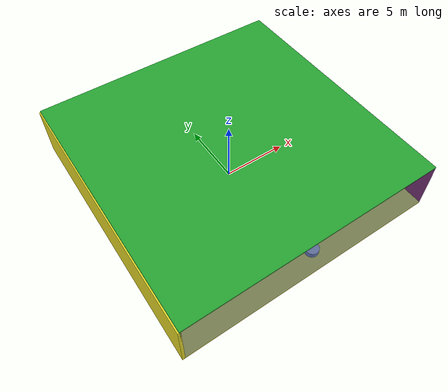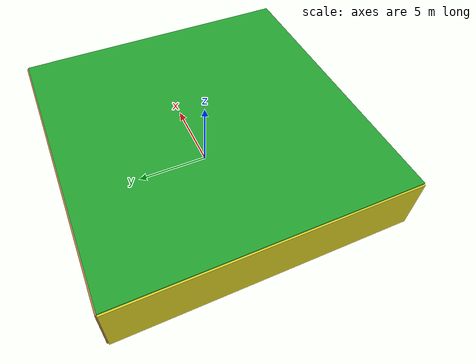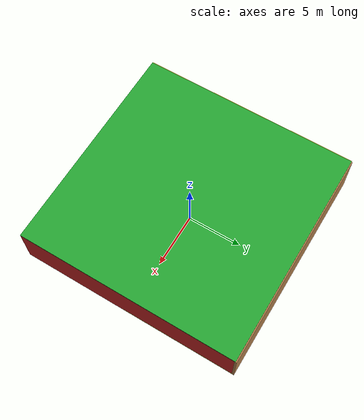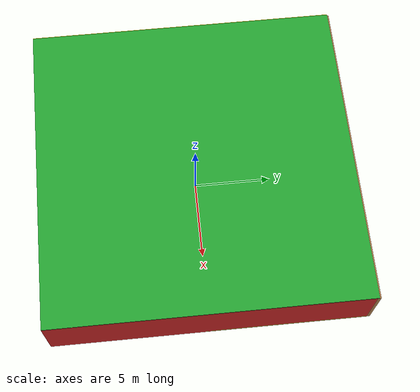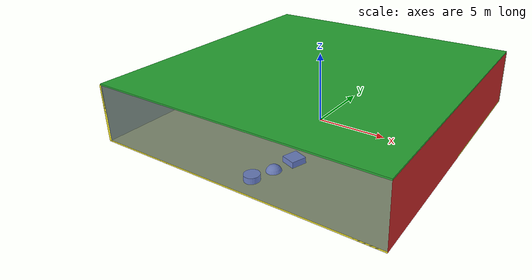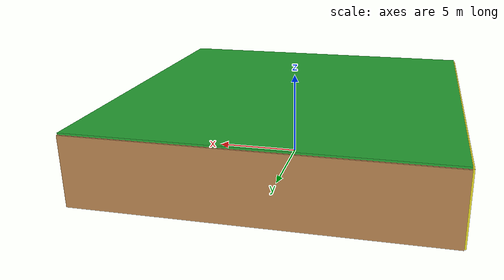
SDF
<sdf version="1.4">
 <world name="default">
  <physics type="ode">
   <max_step_size>0.001</max_step_size>
   <real_time_factor>1</real_time_factor>
   <real_time_update_rate>1000</real_time_update_rate>
   <gravity>0 0 -9.8</gravity>
  </physics>
  <scene><ambient>0.4 0.4 0.4 1</ambient><background>0.7 0.7 0.7 1</background><shadows>1</shadows></scene>
  <model name="Surrounding">
   <static>1</static>
   <link name="Ceiling">
    <collision name="Ceiling_Collision"><geometry><box><size>20 20 0.1</size></box></geometry></collision>
    <visual name="Ceiling_Visual">
     <geometry><box><size>20 20 0.1</size></box></geometry>
     <material>
      <script><uri>file://media/materials/scripts/gazebo.material</uri><name>Gazebo/GreenGlow</name></script>
     </material>
    </visual>
    <pose>0 0 4.05 0 0 0</pose>
   </link>
   <link name="Wall_South">
    <collision name="Wall_South_Collision">
     <geometry><box><size>20 0 4</size></box></geometry>
     <pose>0 0 2 0 -0 0</pose>
    </collision>
    <visual name="Wall_South_Visual">
     <pose>0 0 2 0 -0 0</pose>
     <geometry><box><size>20 0 4</size></box></geometry>
     <material>
      <script><uri>file://media/materials/scripts/gazebo.material</uri><name>Gazebo/BlueTransparent</name></script>
     </material>
    </visual>
    <velocity_decay><linear>0</linear><angular>0</angular></velocity_decay>
    <pose>0 -10 0 0 -0 0</pose>
   </link>
   <link name="Wall_East">
    <collision name="Wall_21_Collision">
     <geometry><box><size>20 0 4</size></box></geometry>
     <pose>0 0 2 0 -0 0</pose>
    </collision>
    <visual name="Wall_21_Visual">
     <pose>0 0 2 0 -0 0</pose>
     <geometry><box><size>20 0 4</size></box></geometry>
     <material>
      <script><uri>file://media/materials/scripts/gazebo.material</uri><name>Gazebo/RedBright</name></script>
     </material>
    </visual>
    <velocity_decay><linear>0</linear><angular>0</angular></velocity_decay>
    <pose>10 0 0 0 -0 1.5708</pose>
   </link>
   <link name="Wall_North">
    <collision name="Wall_22_Collision">
     <geometry><box><size>20 0.2 4</size></box></geometry>
     <pose>0 0 2 0 -0 0</pose>
    </collision>
    <visual name="Wall_22_Visual">
     <pose>0 0 2 0 -0 0</pose>
     <geometry><box><size>20 0.2 4</size></box></geometry>
     <material>
      <script><uri>file://media/materials/scripts/gazebo.material</uri><name>Gazebo/Wood</name></script>
     </material>
    </visual>
    <velocity_decay><linear>0</linear><angular>0</angular></velocity_decay>
    <pose>0 10 0 0 -0 0</pose>
   </link>
   <link name="Wall_West">
    <collision name="Wall_23_Collision">
     <geometry><box><size>20 0.2 4</size></box></geometry>
     <pose>0 0 2 0 -0 0</pose>
    </collision>
    <visual name="Wall_23_Visual">
     <pose>0 0 2 0 -0 0</pose>
     <geometry><box><size>20 0.2 4</size></box></geometry>
     <material>
      <script><uri>file://media/materials/scripts/gazebo.material</uri><name>Gazebo/YellowGlow</name></script>
     </material>
    </visual>
    <velocity_decay><linear>0</linear><angular>0</angular></velocity_decay>
    <pose>-10 0 0 0 0 -1.5708</pose>
   </link>
   <link name="Ground_link">
    <collision name="collision">
     <pose>0 0 .05 0 -0 0</pose>
     <geometry><box><size>20 20 0.1</size></box></geometry>
    </collision>
    <visual name="visual">
     <pose>0 0 .05 0 -0 0</pose>
     <geometry><box><size>20 20 0.1</size></box></geometry>
     <material>
      <script><uri>file://media/materials/scripts/gazebo.material</uri><name>Gazebo/Yellow</name></script>
     </material>
    </visual>
   </link>
   <static>1</static>
  </model>
  <spherical_coordinates>
   <surface_model>EARTH_WGS84</surface_model>
   <latitude_deg>0</latitude_deg>
   <longitude_deg>0</longitude_deg>
   <elevation>0</elevation>
   <heading_deg>0</heading_deg>
  </spherical_coordinates>
  <light name="lightball_0" type="diffuse">
   <diffuse>0.8 0.8 0.8 1</diffuse>
   <specular>0.2 0.2 0.2 1</specular>
   <attenuation>
    <range>100</range>
    <constant>0.7</constant>
    <linear>0.01</linear>
    <quadratic>0.001</quadratic>
   </attenuation>
   <direction>-0.5 0.1 -0.9</direction>
   <pose>-1.01790403431 -4.59281454214 3.11763598756 0 0 0</pose>
  </light>
  <light name="lightball_1" type="diffuse">
   <diffuse>0.8 0.8 0.8 1</diffuse>
   <specular>0.2 0.2 0.2 1</specular>
   <attenuation>
    <range>100</range>
    <constant>0.7</constant>
    <linear>0.01</linear>
    <quadratic>0.001</quadratic>
   </attenuation>
   <direction>-0.5 0.1 -0.9</direction>
   <pose>0.459413990991 2.60857781797 3.66250413797 0 0 0</pose>
  </light>
  <light name="lightball_2" type="diffuse">
   <diffuse>0.8 0.8 0.8 1</diffuse>
   <specular>0.2 0.2 0.2 1</specular>
   <attenuation>
    <range>100</range>
    <constant>0.7</constant>
    <linear>0.01</linear>
    <quadratic>0.001</quadratic>
   </attenuation>
   <direction>-0.5 0.1 -0.9</direction>
   <pose>-5.55992772885 -8.02371713499 3.00586210852 0 0 0</pose>
  </light>
  <light name="lightball_3" type="diffuse">
   <diffuse>0.8 0.8 0.8 1</diffuse>
   <specular>0.2 0.2 0.2 1</specular>
   <attenuation>
    <range>100</range>
    <constant>0.7</constant>
    <linear>0.01</linear>
    <quadratic>0.001</quadratic>
   </attenuation>
   <direction>-0.5 0.1 -0.9</direction>
   <pose>0.0947813556305 -0.620166510862 1.66490228189 0 0 0</pose>
  </light>
  <light name="lightball_4" type="diffuse">
   <diffuse>0.8 0.8 0.8 1</diffuse>
   <specular>0.2 0.2 0.2 1</specular>
   <attenuation>
    <range>100</range>
    <constant>0.7</constant>
    <linear>0.01</linear>
    <quadratic>0.001</quadratic>
   </attenuation>
   <direction>-0.5 0.1 -0.9</direction>
   <pose>6.40095688326 6.21007438234 2.22590755327 0 0 0</pose>
  </light>
  <light name="lightball_5" type="diffuse">
   <diffuse>0.8 0.8 0.8 1</diffuse>
   <specular>0.2 0.2 0.2 1</specular>
   <attenuation>
    <range>100</range>
    <constant>0.7</constant>
    <linear>0.01</linear>
    <quadratic>0.001</quadratic>
   </attenuation>
   <direction>-0.5 0.1 -0.9</direction>
   <pose>5.45621429316 -2.46056150519 0.968348154488 0 0 0</pose>
  </light>
  <light name="lightball_6" type="diffuse">
   <diffuse>0.8 0.8 0.8 1</diffuse>
   <specular>0.2 0.2 0.2 1</specular>
   <attenuation>
    <range>100</range>
    <constant>0.7</constant>
    <linear>0.01</linear>
    <quadratic>0.001</quadratic>
   </attenuation>
   <direction>-0.5 0.1 -0.9</direction>
   <pose>2.58403943342 -4.73579922686 1.12029258574 0 0 0</pose>
  </light>
  <light name="lightball_7" type="diffuse">
   <diffuse>0.8 0.8 0.8 1</diffuse>
   <specular>0.2 0.2 0.2 1</specular>
   <attenuation>
    <range>100</range>
    <constant>0.7</constant>
    <linear>0.01</linear>
    <quadratic>0.001</quadratic>
   </attenuation>
   <direction>-0.5 0.1 -0.9</direction>
   <pose>2.60945625595 -3.13230098181 2.2223056833 0 0 0</pose>
  </light>
  <light name="lightball_8" type="diffuse">
   <diffuse>0.8 0.8 0.8 1</diffuse>
   <specular>0.2 0.2 0.2 1</specular>
   <attenuation>
    <range>100</range>
    <constant>0.7</constant>
    <linear>0.01</linear>
    <quadratic>0.001</quadratic>
   </attenuation>
   <direction>-0.5 0.1 -0.9</direction>
   <pose>-6.61249383718 5.9610856856 1.2948110035 0 0 0</pose>
  </light>
  <light name="lightball_9" type="diffuse">
   <diffuse>0.8 0.8 0.8 1</diffuse>
   <specular>0.2 0.2 0.2 1</specular>
   <attenuation>
    <range>100</range>
    <constant>0.7</constant>
    <linear>0.01</linear>
    <quadratic>0.001</quadratic>
   </attenuation>
   <direction>-0.5 0.1 -0.9</direction>
   <pose>-9.77107569165 5.35520807237 0.515464196106 0 0 0</pose>
  </light>
  <light name="lightball_10" type="diffuse">
   <diffuse>0.8 0.8 0.8 1</diffuse>
   <specular>0.2 0.2 0.2 1</specular>
   <attenuation>
    <range>100</range>
    <constant>0.7</constant>
    <linear>0.01</linear>
    <quadratic>0.001</quadratic>
   </attenuation>
   <direction>-0.5 0.1 -0.9</direction>
   <pose>-7.8028470767 9.42043707919 0.785273963693 0 0 0</pose>
  </light>
  <light name="lightball_11" type="diffuse">
   <diffuse>0.8 0.8 0.8 1</diffuse>
   <specular>0.2 0.2 0.2 1</specular>
   <attenuation>
    <range>100</range>
    <constant>0.7</constant>
    <linear>0.01</linear>
    <quadratic>0.001</quadratic>
   </attenuation>
   <direction>-0.5 0.1 -0.9</direction>
   <pose>6.99648815314 -3.91853671703 1.89663872887 0 0 0</pose>
  </light>
  <light name="lightball_12" type="diffuse">
   <diffuse>0.8 0.8 0.8 1</diffuse>
   <specular>0.2 0.2 0.2 1</specular>
   <attenuation>
    <range>100</range>
    <constant>0.7</constant>
    <linear>0.01</linear>
    <quadratic>0.001</quadratic>
   </attenuation>
   <direction>-0.5 0.1 -0.9</direction>
   <pose>-2.97335889118 6.06856297531 3.08187100059 0 0 0</pose>
  </light>
  <include><uri>model://table</uri><pose>-2.56272239211 7.5409925396 0 0 0 0.305286378629</pose></include>
  <include>
   <uri>model://textured_shapes</uri>
   <pose>1.3472095568 -7.27094914523 0 0 0 2.8153812168</pose>
  </include>
  <include>
   <uri>model://construction_cone</uri>
   <pose>6.85076265928 2.50000197945 0 0 0 2.82396486458</pose>
  </include>
 </world>
</sdf>

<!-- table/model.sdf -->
<sdf version="1.5">
  <model name="table">
    <static>true</static>
    <link name="link">
      <collision name="surface">
        <pose>0 0 1.0 0 0 0</pose>
        <geometry>
          <box>
            <size>1.5 0.8 0.03</size>
          </box>
        </geometry>
        <surface>
          <friction>
            <ode>
              <mu>0.6</mu>
              <mu2>0.6</mu2>
            </ode>
          </friction>
        </surface>
      </collision>
      <visual name="visual1">
        <pose>0 0 1.0 0 0 0</pose>
        <geometry>
          <box>
            <size>1.5 0.8 0.03</size>
          </box>
        </geometry>
        <material>
          <script>
            <uri>model://media/materials/scripts/gazebo.material</uri>
            <name>Gazebo/Wood</name>
          </script>
        </material>
      </visual>
      <collision name="front_left_leg">
        <pose>0.68 0.38 0.5 0 0 0</pose>
        <geometry>
          <cylinder>
            <radius>0.02</radius>
            <length>1.0</length>
          </cylinder>
        </geometry>
      </collision>
      <visual name="front_left_leg">
        <pose>0.68 0.38 0.5 0 0 0</pose>
        <geometry>
          <cylinder>
            <radius>0.02</radius>
            <length>1.0</length>
          </cylinder>
        </geometry>
        <material>
          <script>
            <uri>model://media/materials/scripts/gazebo.material</uri>
            <name>Gazebo/Grey</name>
          </script>
        </material>
      </visual>
      <collision name="front_right_leg">
        <pose>0.68 -0.38 0.5 0 0 0</pose>
        <geometry>
          <cylinder>
            <radius>0.02</radius>
            <length>1.0</length>
          </cylinder>
        </geometry>
      </collision>
      <visual name="front_right_leg">
        <pose>0.68 -0.38 0.5 0 0 0</pose>
        <geometry>
          <cylinder>
            <radius>0.02</radius>
            <length>1.0</length>
          </cylinder>
        </geometry>
        <material>
          <script>
            <uri>model://media/materials/scripts/gazebo.material</uri>
            <name>Gazebo/Grey</name>
          </script>
        </material>
      </visual>
      <collision name="back_right_leg">
        <pose>-0.68 -0.38 0.5 0 0 0</pose>
        <geometry>
          <cylinder>
            <radius>0.02</radius>
            <length>1.0</length>
          </cylinder>
        </geometry>
      </collision>
      <visual name="back_right_leg">
        <pose>-0.68 -0.38 0.5 0 0 0</pose>
        <geometry>
          <cylinder>
            <radius>0.02</radius>
            <length>1.0</length>
          </cylinder>
        </geometry>
        <material>
          <script>
            <uri>model://media/materials/scripts/gazebo.material</uri>
            <name>Gazebo/Grey</name>
          </script>
        </material>
      </visual>
      <collision name="back_left_leg">
        <pose>-0.68 0.38 0.5 0 0 0</pose>
        <geometry>
          <cylinder>
            <radius>0.02</radius>
            <length>1.0</length>
          </cylinder>
        </geometry>
      </collision>
      <visual name="back_left_leg">
        <pose>-0.68 0.38 0.5 0 0 0</pose>
        <geometry>
          <cylinder>
            <radius>0.02</radius>
            <length>1.0</length>
          </cylinder>
        </geometry>
        <material>
          <script>
            <uri>model://media/materials/scripts/gazebo.material</uri>
            <name>Gazebo/Grey</name>
          </script>
        </material>
      </visual>
    </link>
  </model>
</sdf>

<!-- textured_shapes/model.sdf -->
<sdf version="1.6">
  <model name="textured_shapes">
    <pose>0 0 0.5 0 0 0</pose>
    <link name="box">
      <pose>0 -1.5 0 0 0 0</pose>
      <collision name="collision">
        <geometry>
          <box>
            <size>1 1 1</size>
          </box>
        </geometry>
      </collision>
      <visual name="visual">
        <geometry>
          <box>
            <size>1 1 1</size>
          </box>
        </geometry>
        <material>
          <script>
            <uri>model://../model_source/models/textured_shapes/materials/scripts</uri>
            <uri>model://../model_source/models/textured_shapes/materials/textures</uri>
            <name>TexturedShape/Squares</name>
          </script>
        </material>
      </visual>
    </link>
    <link name="sphere">
      <collision name="collision">
        <geometry>
          <sphere>
            <radius>0.5</radius>
          </sphere>
        </geometry>
      </collision>
      <visual name="visual">
        <geometry>
          <sphere>
            <radius>0.5</radius>
          </sphere>
        </geometry>
        <material>
          <script>
            <uri>model://../model_source/models/textured_shapes/materials/scripts</uri>
            <uri>model://../model_source/models/textured_shapes/materials/textures</uri>
            <name>TexturedShape/Squares</name>
          </script>
        </material>
      </visual>
    </link>
    <link name="cylinder">
      <pose>0 1.5 0 0 0 0</pose>
      <collision name="collision">
        <geometry>
          <cylinder>
            <radius>0.5</radius>
            <length>1</length>
          </cylinder>
        </geometry>
      </collision>
      <visual name="visual">
        <geometry>
          <cylinder>
            <radius>0.5</radius>
            <length>1</length>
          </cylinder>
        </geometry>
        <material>
          <script>
            <uri>model://../model_source/models/textured_shapes/materials/scripts</uri>
            <uri>model://../model_source/models/textured_shapes/materials/textures</uri>
            <name>TexturedShape/Squares</name>
          </script>
        </material>
      </visual>
    </link>
  </model>
</sdf>

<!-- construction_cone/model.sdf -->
<sdf version="1.5">
  <model name="Construction Cone">
    <link name="link">
      <collision name="collision">
        <geometry>
          <mesh>
            <scale>10 10 10</scale>
            <uri>file://isr-testbed/construction_cone/meshes/construction_cone.dae</uri>
          </mesh>
        </geometry>
      </collision>
      <visual name="visual">
        <geometry>
          <mesh>
            <scale>10 10 10</scale>
            <uri>file://isr-testbed/construction_cone/meshes/construction_cone.dae</uri>
          </mesh>
        </geometry>
      </visual>
    </link>
  </model>
</sdf>
